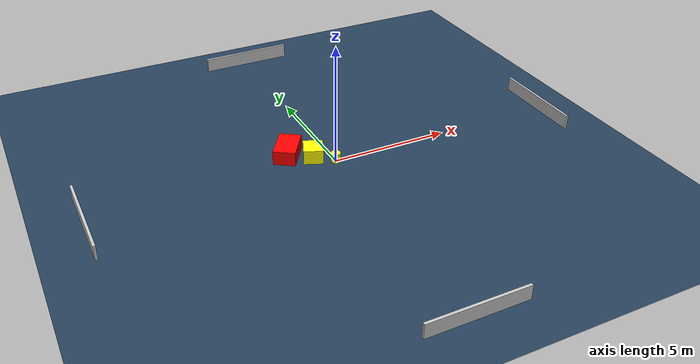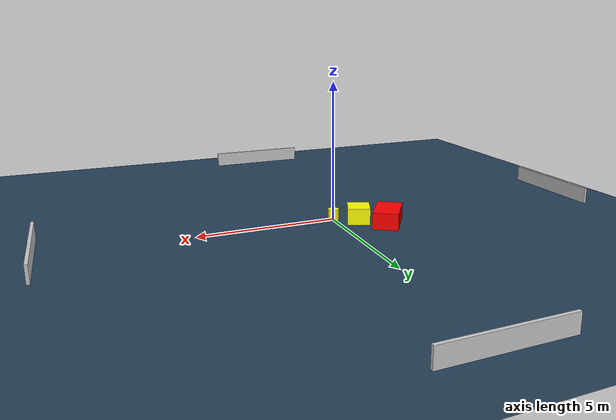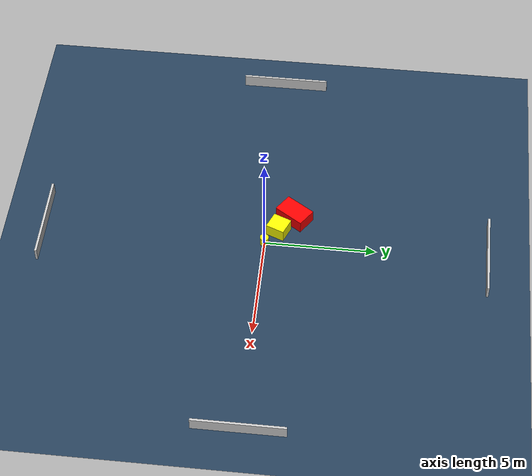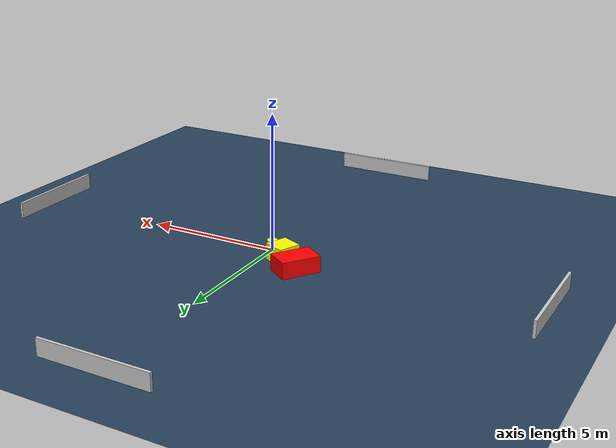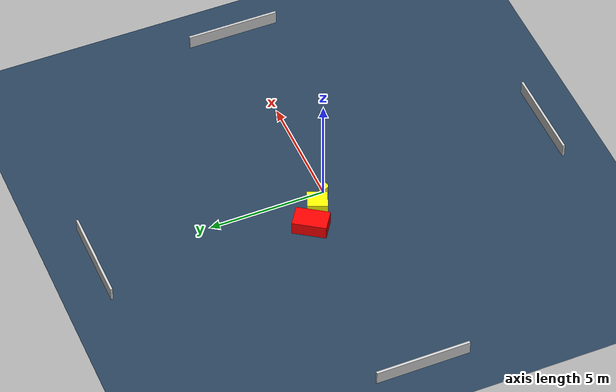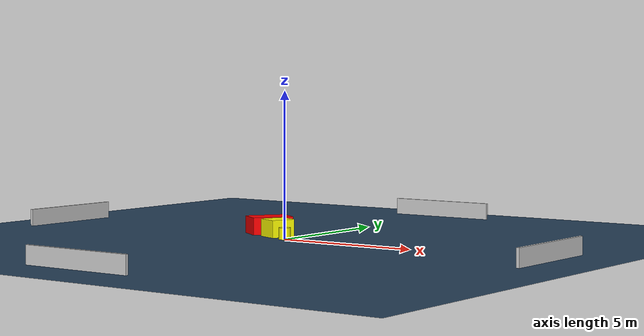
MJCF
<?xml version="1.0" ?>
<mujoco model="generated_environment">
  <option timestep="0.01" integrator="RK4" cone="elliptic"/>
  <default>
    <geom density="1"/>
  </default>
  <asset>
    <texture builtin="gradient" height="3072" name="skybox" rgb1="0.3 0.5 0.7" rgb2="0 0 0" type="skybox" width="512"/>
    <texture builtin="checker" height="300" name="groundplane" rgb1="0.2 0.3 0.4" rgb2="0.1 0.2 0.3" type="2d" width="300"/>
    <material name="groundplane" reflectance="0.2" texrepeat="5 5" texture="groundplane"/>
  </asset>
  <worldbody>
    <light dir="0 0 -1" directional="true" pos="0 0 1.5"/>
    <geom condim="3" friction="0.5 0.005 0.001" material="groundplane" name="floor" pos="0 0 0" size="0 0 0.05" type="plane"/>
    <body name="walls">
      <geom name="wall_1" condim="4" pos="-10.0 0.0 0.3" rgba="0.800000011920929 0.800000011920929 0.800000011920929 1.0" size="0.05 2.0 0.3" type="box"/>
      <geom name="wall_2" condim="4" pos="10.0 0.0 0.3" rgba="0.800000011920929 0.800000011920929 0.800000011920929 1.0" size="0.05 2.0 0.3" type="box"/>
      <geom name="wall_3" condim="4" pos="0.0 -10.0 0.3" rgba="0.800000011920929 0.800000011920929 0.800000011920929 1.0" size="2.0 0.05 0.3" type="box"/>
      <geom name="wall_4" condim="4" pos="0.0 10.0 0.3" rgba="0.800000011920929 0.800000011920929 0.800000011920929 1.0" size="2.0 0.05 0.3" type="box"/>
    </body>
    <body name="robot">
      <joint name="joint_x" type="slide" pos="0 0 0" axis="1 0 0"/>
      <joint name="joint_y" type="slide" pos="0 0 0" axis="0 1 0"/>
      <geom name="robot" type="cylinder" pos="0.0 0.0 0.2" size="0.2 0.2 0.0" mass="5.0" friction="1.0 0.005 0.0001" condim="4" rgba="1.0 1.0 0.0 1.0"/>
    </body>
    <body name="obstacle_1_movable">
      <geom name="obstacle_1_movable" condim="4" pos="-0.736054206675325 0.5757184000864907 0.3" euler="0 0 67.54949646608269" friction="0.0 0.005 0.001" rgba="1.0 1.0 0.0 1.0" size="0.4284184189705982 0.3995417423491213 0.3" type="box" mass="0.1"/>
      <joint type="free"/>
    </body>
    <body name="obstacle_2_static">
      <geom name="obstacle_2_static" condim="4" pos="-1.587056286689786 1.2093222449590764 0.3" euler="0 0 235.906283135323" friction="0.0 0.005 0.001" rgba="1.0 0.0 0.0 1.0" size="0.7187164440756437 0.45552789416480877 0.3" type="box"/>
    </body>
  </worldbody>
  <actuator>
    <motor name="actuator_x" joint="joint_x" gear="1" ctrlrange="-1 1"/>
    <motor name="actuator_y" joint="joint_y" gear="1" ctrlrange="-1 1"/>
  </actuator>
</mujoco>
